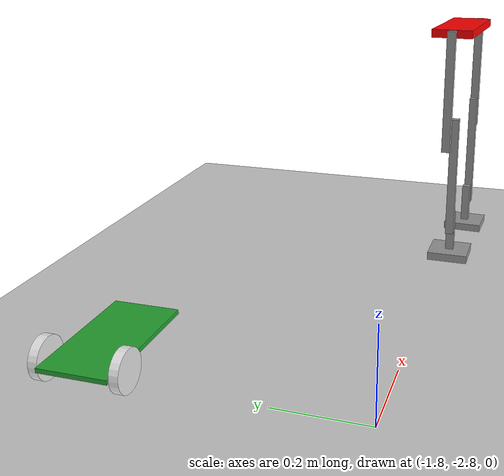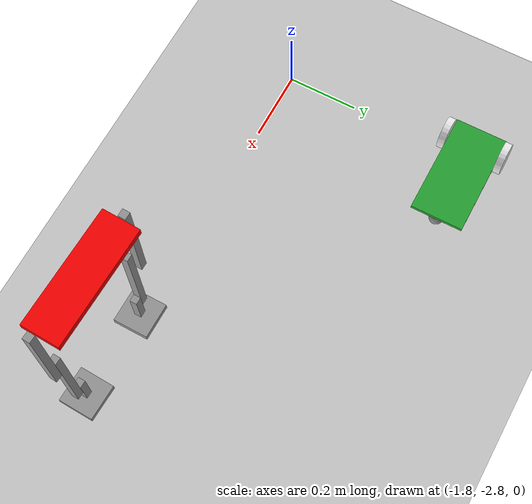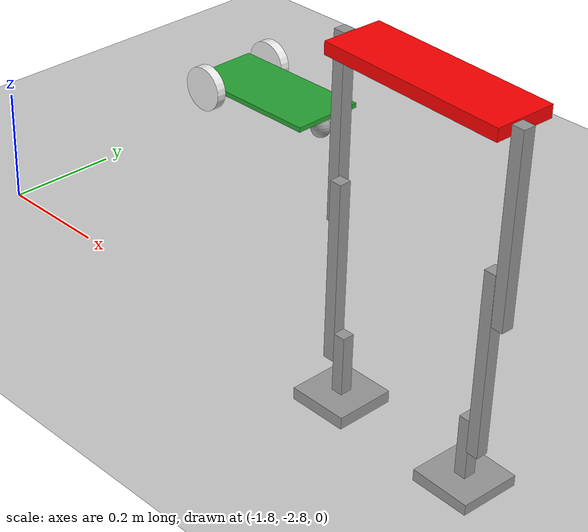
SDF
<sdf version="1.6">
 <world name="default">
  <model name="ground_plane">
   <static>1</static>
   <link name="link">
    <collision name="collision">
     <geometry><plane><normal>0 0 1</normal><size>100 100</size></plane></geometry>
     <surface><friction><ode><mu>100</mu><mu2>50</mu2></ode></friction></surface>
    </collision>
    <visual name="visual">
     <cast_shadows>0</cast_shadows>
     <geometry><plane><normal>0 0 1</normal><size>100 100</size></plane></geometry>
     <material>
      <script><uri>file://media/materials/scripts/gazebo.material</uri><name>Gazebo/Grey</name></script>
     </material>
    </visual>
   </link>
  </model>
  <model name="Humanoid_0">
   <link name="link_0">
    <pose>0.006667 0 -0.09 0 -0 0</pose>
    <inertial>
     <mass>5</mass>
     <inertia>
      <ixx>0.166667</ixx>
      <ixy>0</ixy>
      <ixz>0</ixz>
      <iyy>0.166667</iyy>
      <iyz>0</iyz>
      <izz>0.166667</izz>
     </inertia>
    </inertial>
    <visual name="visual">
     <geometry><box><size>0.1 0.1 0.02</size></box></geometry>
     <material>
      <lighting>1</lighting>
      <script><uri>file://media/materials/scripts/gazebo.material</uri><name>Gazebo/Grey</name></script>
      <ambient>0.3 0.3 0.3 1</ambient>
      <diffuse>0.7 0.7 0.7 1</diffuse>
      <specular>0.01 0.01 0.01 1</specular>
      <emissive>0 0 0 1</emissive>
      <shader type="vertex"><normal_map>__default__</normal_map></shader>
     </material>
    </visual>
    <collision name="collision">
     <geometry><box><size>0.1 0.1 0.02</size></box></geometry>
     <surface>
      <friction>
       <ode><mu>1</mu><mu2>1</mu2><fdir1>0 0 0</fdir1><slip1>0</slip1><slip2>0</slip2></ode>
       <torsional>
        <coefficient>1</coefficient>
        <patch_radius>0</patch_radius>
        <surface_radius>0</surface_radius>
        <use_patch_radius>1</use_patch_radius>
        <ode><slip>0</slip></ode>
       </torsional>
      </friction>
      <bounce><restitution_coefficient>0</restitution_coefficient><threshold>1e+06</threshold></bounce>
      <contact>
       <collide_without_contact>0</collide_without_contact>
       <collide_without_contact_bitmask>1</collide_without_contact_bitmask>
       <collide_bitmask>1</collide_bitmask>
       <ode>
        <soft_cfm>0</soft_cfm>
        <soft_erp>0.2</soft_erp>
        <kp>1e+13</kp>
        <kd>1</kd>
        <max_vel>0.01</max_vel>
        <min_depth>0</min_depth>
       </ode>
       <bullet>
        <split_impulse>1</split_impulse>
        <split_impulse_penetration_threshold>-0.01</split_impulse_penetration_threshold>
        <soft_cfm>0</soft_cfm>
        <soft_erp>0.2</soft_erp>
        <kp>1e+13</kp>
        <kd>1</kd>
       </bullet>
      </contact>
     </surface>
    </collision>
   </link>
   <link name="link_0_clone">
    <pose>0.256667 -0.006866 -0.09105 -0.000217 0.006468 -0.033563</pose>
    <inertial>
     <mass>5</mass>
     <inertia>
      <ixx>0.166667</ixx>
      <ixy>0</ixy>
      <ixz>0</ixz>
      <iyy>0.166667</iyy>
      <iyz>0</iyz>
      <izz>0.166667</izz>
     </inertia>
    </inertial>
    <visual name="visual">
     <geometry><box><size>0.1 0.1 0.02</size></box></geometry>
     <material>
      <lighting>1</lighting>
      <script><uri>file://media/materials/scripts/gazebo.material</uri><name>Gazebo/Grey</name></script>
      <ambient>0.3 0.3 0.3 1</ambient>
      <diffuse>0.7 0.7 0.7 1</diffuse>
      <specular>0.01 0.01 0.01 1</specular>
      <emissive>0 0 0 1</emissive>
      <shader type="vertex"><normal_map>__default__</normal_map></shader>
     </material>
    </visual>
    <collision name="collision">
     <geometry><box><size>0.1 0.1 0.02</size></box></geometry>
     <surface>
      <friction>
       <ode><mu>1</mu><mu2>1</mu2><fdir1>0 0 0</fdir1><slip1>0</slip1><slip2>0</slip2></ode>
       <torsional>
        <coefficient>1</coefficient>
        <patch_radius>0</patch_radius>
        <surface_radius>0</surface_radius>
        <use_patch_radius>1</use_patch_radius>
        <ode><slip>0</slip></ode>
       </torsional>
      </friction>
      <bounce><restitution_coefficient>0</restitution_coefficient><threshold>1e+06</threshold></bounce>
      <contact>
       <collide_without_contact>0</collide_without_contact>
       <collide_without_contact_bitmask>1</collide_without_contact_bitmask>
       <collide_bitmask>1</collide_bitmask>
       <ode>
        <soft_cfm>0</soft_cfm>
        <soft_erp>0.2</soft_erp>
        <kp>1e+13</kp>
        <kd>1</kd>
        <max_vel>0.01</max_vel>
        <min_depth>0</min_depth>
       </ode>
       <bullet>
        <split_impulse>1</split_impulse>
        <split_impulse_penetration_threshold>-0.01</split_impulse_penetration_threshold>
        <soft_cfm>0</soft_cfm>
        <soft_erp>0.2</soft_erp>
        <kp>1e+13</kp>
        <kd>1</kd>
       </bullet>
      </contact>
     </surface>
    </collision>
   </link>
   <link name="link_1">
    <pose>0.006667 0 -0.03 0 -0 0</pose>
    <inertial>
     <mass>1</mass>
     <inertia>
      <ixx>0.166667</ixx>
      <ixy>0</ixy>
      <ixz>0</ixz>
      <iyy>0.166667</iyy>
      <iyz>0</iyz>
      <izz>0.166667</izz>
     </inertia>
    </inertial>
    <visual name="visual">
     <geometry><box><size>0.02 0.02 0.1</size></box></geometry>
     <material>
      <lighting>1</lighting>
      <script><uri>file://media/materials/scripts/gazebo.material</uri><name>Gazebo/Grey</name></script>
      <ambient>0.3 0.3 0.3 1</ambient>
      <diffuse>0.7 0.7 0.7 1</diffuse>
      <specular>0.01 0.01 0.01 1</specular>
      <emissive>0 0 0 1</emissive>
      <shader type="vertex"><normal_map>__default__</normal_map></shader>
     </material>
    </visual>
    <collision name="collision">
     <geometry><box><size>0.02 0.02 0.1</size></box></geometry>
     <surface>
      <friction>
       <ode><mu>1</mu><mu2>1</mu2><fdir1>0 0 0</fdir1><slip1>0</slip1><slip2>0</slip2></ode>
       <torsional>
        <coefficient>1</coefficient>
        <patch_radius>0</patch_radius>
        <surface_radius>0</surface_radius>
        <use_patch_radius>1</use_patch_radius>
        <ode><slip>0</slip></ode>
       </torsional>
      </friction>
      <bounce><restitution_coefficient>0</restitution_coefficient><threshold>1e+06</threshold></bounce>
      <contact>
       <collide_without_contact>0</collide_without_contact>
       <collide_without_contact_bitmask>1</collide_without_contact_bitmask>
       <collide_bitmask>1</collide_bitmask>
       <ode>
        <soft_cfm>0</soft_cfm>
        <soft_erp>0.2</soft_erp>
        <kp>1e+13</kp>
        <kd>1</kd>
        <max_vel>0.01</max_vel>
        <min_depth>0</min_depth>
       </ode>
       <bullet>
        <split_impulse>1</split_impulse>
        <split_impulse_penetration_threshold>-0.01</split_impulse_penetration_threshold>
        <soft_cfm>0</soft_cfm>
        <soft_erp>0.2</soft_erp>
        <kp>1e+13</kp>
        <kd>1</kd>
       </bullet>
      </contact>
     </surface>
    </collision>
   </link>
   <link name="link_1_clone">
    <pose>-0.013333 0 0.12 0 -0 0</pose>
    <inertial>
     <mass>1</mass>
     <inertia>
      <ixx>0.166667</ixx>
      <ixy>0</ixy>
      <ixz>0</ixz>
      <iyy>0.166667</iyy>
      <iyz>0</iyz>
      <izz>0.166667</izz>
     </inertia>
    </inertial>
    <visual name="visual">
     <geometry><box><size>0.02 0.02 0.3</size></box></geometry>
     <material>
      <lighting>1</lighting>
      <script><uri>file://media/materials/scripts/gazebo.material</uri><name>Gazebo/Grey</name></script>
      <ambient>0.3 0.3 0.3 1</ambient>
      <diffuse>0.7 0.7 0.7 1</diffuse>
      <specular>0.01 0.01 0.01 1</specular>
      <emissive>0 0 0 1</emissive>
      <shader type="vertex"><normal_map>__default__</normal_map></shader>
     </material>
    </visual>
    <collision name="collision">
     <geometry><box><size>0.02 0.02 0.3</size></box></geometry>
     <surface>
      <friction>
       <ode><mu>1</mu><mu2>1</mu2><fdir1>0 0 0</fdir1><slip1>0</slip1><slip2>0</slip2></ode>
       <torsional>
        <coefficient>1</coefficient>
        <patch_radius>0</patch_radius>
        <surface_radius>0</surface_radius>
        <use_patch_radius>1</use_patch_radius>
        <ode><slip>0</slip></ode>
       </torsional>
      </friction>
      <bounce><restitution_coefficient>0</restitution_coefficient><threshold>1e+06</threshold></bounce>
      <contact>
       <collide_without_contact>0</collide_without_contact>
       <collide_without_contact_bitmask>1</collide_without_contact_bitmask>
       <collide_bitmask>1</collide_bitmask>
       <ode>
        <soft_cfm>0</soft_cfm>
        <soft_erp>0.2</soft_erp>
        <kp>1e+13</kp>
        <kd>1</kd>
        <max_vel>0.01</max_vel>
        <min_depth>0</min_depth>
       </ode>
       <bullet>
        <split_impulse>1</split_impulse>
        <split_impulse_penetration_threshold>-0.01</split_impulse_penetration_threshold>
        <soft_cfm>0</soft_cfm>
        <soft_erp>0.2</soft_erp>
        <kp>1e+13</kp>
        <kd>1</kd>
       </bullet>
      </contact>
     </surface>
    </collision>
   </link>
   <link name="link_1_clone_0">
    <pose>0.257051 -0.006866 -0.031684 -0.000217 0.006468 -0.033563</pose>
    <inertial>
     <mass>1</mass>
     <inertia>
      <ixx>0.166667</ixx>
      <ixy>0</ixy>
      <ixz>0</ixz>
      <iyy>0.166667</iyy>
      <iyz>0</iyz>
      <izz>0.166667</izz>
     </inertia>
    </inertial>
    <visual name="visual">
     <geometry><box><size>0.02 0.02 0.1</size></box></geometry>
     <material>
      <lighting>1</lighting>
      <script><uri>file://media/materials/scripts/gazebo.material</uri><name>Gazebo/Grey</name></script>
      <ambient>0.3 0.3 0.3 1</ambient>
      <diffuse>0.7 0.7 0.7 1</diffuse>
      <specular>0.01 0.01 0.01 1</specular>
      <emissive>0 0 0 1</emissive>
      <shader type="vertex"><normal_map>__default__</normal_map></shader>
     </material>
    </visual>
    <collision name="collision">
     <geometry><box><size>0.02 0.02 0.1</size></box></geometry>
     <surface>
      <friction>
       <ode><mu>1</mu><mu2>1</mu2><fdir1>0 0 0</fdir1><slip1>0</slip1><slip2>0</slip2></ode>
       <torsional>
        <coefficient>1</coefficient>
        <patch_radius>0</patch_radius>
        <surface_radius>0</surface_radius>
        <use_patch_radius>1</use_patch_radius>
        <ode><slip>0</slip></ode>
       </torsional>
      </friction>
      <bounce><restitution_coefficient>0</restitution_coefficient><threshold>1e+06</threshold></bounce>
      <contact>
       <collide_without_contact>0</collide_without_contact>
       <collide_without_contact_bitmask>1</collide_without_contact_bitmask>
       <collide_bitmask>1</collide_bitmask>
       <ode>
        <soft_cfm>0</soft_cfm>
        <soft_erp>0.2</soft_erp>
        <kp>1e+13</kp>
        <kd>1</kd>
        <max_vel>0.01</max_vel>
        <min_depth>0</min_depth>
       </ode>
       <bullet>
        <split_impulse>1</split_impulse>
        <split_impulse_penetration_threshold>-0.01</split_impulse_penetration_threshold>
        <soft_cfm>0</soft_cfm>
        <soft_erp>0.2</soft_erp>
        <kp>1e+13</kp>
        <kd>1</kd>
       </bullet>
      </contact>
     </surface>
    </collision>
   </link>
   <link name="link_1_clone_clone">
    <pose>-0.03389 0.016897 0.340001 0 5e-06 -0.021945</pose>
    <inertial>
     <mass>1</mass>
     <inertia>
      <ixx>0.166667</ixx>
      <ixy>0</ixy>
      <ixz>0</ixz>
      <iyy>0.166667</iyy>
      <iyz>0</iyz>
      <izz>0.166667</izz>
     </inertia>
    </inertial>
    <visual name="visual">
     <geometry><box><size>0.02 0.02 0.3</size></box></geometry>
     <material>
      <lighting>1</lighting>
      <script><uri>file://media/materials/scripts/gazebo.material</uri><name>Gazebo/Grey</name></script>
      <ambient>0.3 0.3 0.3 1</ambient>
      <diffuse>0.7 0.7 0.7 1</diffuse>
      <specular>0.01 0.01 0.01 1</specular>
      <emissive>0 0 0 1</emissive>
      <shader type="vertex"><normal_map>__default__</normal_map></shader>
     </material>
    </visual>
    <collision name="collision">
     <geometry><box><size>0.02 0.02 0.3</size></box></geometry>
     <surface>
      <friction>
       <ode><mu>1</mu><mu2>1</mu2><fdir1>0 0 0</fdir1><slip1>0</slip1><slip2>0</slip2></ode>
       <torsional>
        <coefficient>1</coefficient>
        <patch_radius>0</patch_radius>
        <surface_radius>0</surface_radius>
        <use_patch_radius>1</use_patch_radius>
        <ode><slip>0</slip></ode>
       </torsional>
      </friction>
      <bounce><restitution_coefficient>0</restitution_coefficient><threshold>1e+06</threshold></bounce>
      <contact>
       <collide_without_contact>0</collide_without_contact>
       <collide_without_contact_bitmask>1</collide_without_contact_bitmask>
       <collide_bitmask>1</collide_bitmask>
       <ode>
        <soft_cfm>0</soft_cfm>
        <soft_erp>0.2</soft_erp>
        <kp>1e+13</kp>
        <kd>1</kd>
        <max_vel>0.01</max_vel>
        <min_depth>0</min_depth>
       </ode>
       <bullet>
        <split_impulse>1</split_impulse>
        <split_impulse_penetration_threshold>-0.01</split_impulse_penetration_threshold>
        <soft_cfm>0</soft_cfm>
        <soft_erp>0.2</soft_erp>
        <kp>1e+13</kp>
        <kd>1</kd>
       </bullet>
      </contact>
     </surface>
    </collision>
   </link>
   <link name="link_1_clone_clone_0">
    <pose>0.277922 -0.010142 0.118054 -0.000217 0.006468 -0.033563</pose>
    <inertial>
     <mass>1</mass>
     <inertia>
      <ixx>0.166667</ixx>
      <ixy>0</ixy>
      <ixz>0</ixz>
      <iyy>0.166667</iyy>
      <iyz>0</iyz>
      <izz>0.166667</izz>
     </inertia>
    </inertial>
    <visual name="visual">
     <geometry><box><size>0.02 0.02 0.3</size></box></geometry>
     <material>
      <lighting>1</lighting>
      <script><uri>file://media/materials/scripts/gazebo.material</uri><name>Gazebo/Grey</name></script>
      <ambient>0.3 0.3 0.3 1</ambient>
      <diffuse>0.7 0.7 0.7 1</diffuse>
      <specular>0.01 0.01 0.01 1</specular>
      <emissive>0 0 0 1</emissive>
      <shader type="vertex"><normal_map>__default__</normal_map></shader>
     </material>
    </visual>
    <collision name="collision">
     <geometry><box><size>0.02 0.02 0.3</size></box></geometry>
     <surface>
      <friction>
       <ode><mu>1</mu><mu2>1</mu2><fdir1>0 0 0</fdir1><slip1>0</slip1><slip2>0</slip2></ode>
       <torsional>
        <coefficient>1</coefficient>
        <patch_radius>0</patch_radius>
        <surface_radius>0</surface_radius>
        <use_patch_radius>1</use_patch_radius>
        <ode><slip>0</slip></ode>
       </torsional>
      </friction>
      <bounce><restitution_coefficient>0</restitution_coefficient><threshold>1e+06</threshold></bounce>
      <contact>
       <collide_without_contact>0</collide_without_contact>
       <collide_without_contact_bitmask>1</collide_without_contact_bitmask>
       <collide_bitmask>1</collide_bitmask>
       <ode>
        <soft_cfm>0</soft_cfm>
        <soft_erp>0.2</soft_erp>
        <kp>1e+13</kp>
        <kd>1</kd>
        <max_vel>0.01</max_vel>
        <min_depth>0</min_depth>
       </ode>
       <bullet>
        <split_impulse>1</split_impulse>
        <split_impulse_penetration_threshold>-0.01</split_impulse_penetration_threshold>
        <soft_cfm>0</soft_cfm>
        <soft_erp>0.2</soft_erp>
        <kp>1e+13</kp>
        <kd>1</kd>
       </bullet>
      </contact>
     </surface>
    </collision>
   </link>
   <link name="link_1_clone_clone_clone">
    <pose>0.29956 -0.010603 0.338069 -0.000359 0.006466 -0.055508</pose>
    <inertial>
     <mass>1</mass>
     <inertia>
      <ixx>0.166667</ixx>
      <ixy>0</ixy>
      <ixz>0</ixz>
      <iyy>0.166667</iyy>
      <iyz>0</iyz>
      <izz>0.166667</izz>
     </inertia>
    </inertial>
    <visual name="visual">
     <geometry><box><size>0.02 0.02 0.3</size></box></geometry>
     <material>
      <lighting>1</lighting>
      <script><uri>file://media/materials/scripts/gazebo.material</uri><name>Gazebo/Grey</name></script>
      <ambient>0.3 0.3 0.3 1</ambient>
      <diffuse>0.7 0.7 0.7 1</diffuse>
      <specular>0.01 0.01 0.01 1</specular>
      <emissive>0 0 0 1</emissive>
      <shader type="vertex"><normal_map>__default__</normal_map></shader>
     </material>
    </visual>
    <collision name="collision">
     <geometry><box><size>0.02 0.02 0.3</size></box></geometry>
     <surface>
      <friction>
       <ode><mu>1</mu><mu2>1</mu2><fdir1>0 0 0</fdir1><slip1>0</slip1><slip2>0</slip2></ode>
       <torsional>
        <coefficient>1</coefficient>
        <patch_radius>0</patch_radius>
        <surface_radius>0</surface_radius>
        <use_patch_radius>1</use_patch_radius>
        <ode><slip>0</slip></ode>
       </torsional>
      </friction>
      <bounce><restitution_coefficient>0</restitution_coefficient><threshold>1e+06</threshold></bounce>
      <contact>
       <collide_without_contact>0</collide_without_contact>
       <collide_without_contact_bitmask>1</collide_without_contact_bitmask>
       <collide_bitmask>1</collide_bitmask>
       <ode>
        <soft_cfm>0</soft_cfm>
        <soft_erp>0.2</soft_erp>
        <kp>1e+13</kp>
        <kd>1</kd>
        <max_vel>0.01</max_vel>
        <min_depth>0</min_depth>
       </ode>
       <bullet>
        <split_impulse>1</split_impulse>
        <split_impulse_penetration_threshold>-0.01</split_impulse_penetration_threshold>
        <soft_cfm>0</soft_cfm>
        <soft_erp>0.2</soft_erp>
        <kp>1e+13</kp>
        <kd>1</kd>
       </bullet>
      </contact>
     </surface>
    </collision>
   </link>
   <link name="link_3">
    <pose>0.13353 0.013252 0.480016 -0.000217 0.006468 -0.033563</pose>
    <inertial>
     <mass>1</mass>
     <inertia>
      <ixx>0.166667</ixx>
      <ixy>0</ixy>
      <ixz>0</ixz>
      <iyy>0.166667</iyy>
      <iyz>0</iyz>
      <izz>0.166667</izz>
     </inertia>
    </inertial>
    <visual name="visual">
     <geometry><box><size>0.31 0.1 0.02</size></box></geometry>
     <material>
      <lighting>1</lighting>
      <script><uri>file://media/materials/scripts/gazebo.material</uri><name>Gazebo/Grey</name></script>
      <ambient>1 0 0 1</ambient>
      <diffuse>0.7 0.7 0.7 1</diffuse>
      <specular>0.01 0.01 0.01 1</specular>
      <emissive>0 0 0 1</emissive>
      <shader type="vertex"><normal_map>__default__</normal_map></shader>
     </material>
    </visual>
    <collision name="collision">
     <geometry><box><size>0.31 0.1 0.02</size></box></geometry>
     <surface>
      <friction>
       <ode><mu>1</mu><mu2>1</mu2><fdir1>0 0 0</fdir1><slip1>0</slip1><slip2>0</slip2></ode>
       <torsional>
        <coefficient>1</coefficient>
        <patch_radius>0</patch_radius>
        <surface_radius>0</surface_radius>
        <use_patch_radius>1</use_patch_radius>
        <ode><slip>0</slip></ode>
       </torsional>
      </friction>
      <bounce><restitution_coefficient>0</restitution_coefficient><threshold>1e+06</threshold></bounce>
      <contact>
       <collide_without_contact>0</collide_without_contact>
       <collide_without_contact_bitmask>1</collide_without_contact_bitmask>
       <collide_bitmask>1</collide_bitmask>
       <ode>
        <soft_cfm>0</soft_cfm>
        <soft_erp>0.2</soft_erp>
        <kp>1e+13</kp>
        <kd>1</kd>
        <max_vel>0.01</max_vel>
        <min_depth>0</min_depth>
       </ode>
       <bullet>
        <split_impulse>1</split_impulse>
        <split_impulse_penetration_threshold>-0.01</split_impulse_penetration_threshold>
        <soft_cfm>0</soft_cfm>
        <soft_erp>0.2</soft_erp>
        <kp>1e+13</kp>
        <kd>1</kd>
       </bullet>
      </contact>
     </surface>
    </collision>
   </link>
   <joint name="link_0_JOINT_0" type="fixed">
    <parent>link_0</parent>
    <child>link_1</child>
    <pose>0 0 -0.05 0 -0 0</pose>
    <physics>
     <ode><limit><cfm>0</cfm><erp>0.2</erp></limit><suspension><cfm>0</cfm><erp>0.2</erp></suspension></ode>
    </physics>
   </joint>
   <joint name="link_0_clone_JOINT_9" type="fixed">
    <parent>link_0_clone</parent>
    <child>link_1_clone_0</child>
    <pose>0 0 -0.05 0 -0 0</pose>
    <physics>
     <ode><limit><cfm>0</cfm><erp>0.2</erp></limit><suspension><cfm>0</cfm><erp>0.2</erp></suspension></ode>
    </physics>
   </joint>
   <joint name="link_1_JOINT_1" type="revolute">
    <parent>link_1</parent>
    <child>link_1_clone</child>
    <pose>0 0 -0.12 0 -0 0</pose>
    <axis>
     <xyz>1 0 0</xyz>
     <use_parent_model_frame>0</use_parent_model_frame>
     <limit><lower>0</lower><upper>0</upper><effort>-1</effort><velocity>-1</velocity></limit>
     <dynamics>
      <spring_reference>0</spring_reference>
      <spring_stiffness>0</spring_stiffness>
      <damping>0</damping>
      <friction>0</friction>
     </dynamics>
    </axis>
    <physics>
     <ode><limit><cfm>0</cfm><erp>0.2</erp></limit><suspension><cfm>0</cfm><erp>0.2</erp></suspension></ode>
    </physics>
   </joint>
   <joint name="link_1_clone_0_JOINT_12" type="revolute">
    <parent>link_1_clone_0</parent>
    <child>link_1_clone_clone_0</child>
    <pose>0 0 -0.12 0 -0 0</pose>
    <axis>
     <xyz>1 0 0</xyz>
     <use_parent_model_frame>0</use_parent_model_frame>
     <limit><lower>0</lower><upper>0</upper><effort>-1</effort><velocity>-1</velocity></limit>
     <dynamics>
      <spring_reference>0</spring_reference>
      <spring_stiffness>0</spring_stiffness>
      <damping>0</damping>
      <friction>0</friction>
     </dynamics>
    </axis>
    <physics>
     <ode><limit><cfm>0</cfm><erp>0.2</erp></limit><suspension><cfm>0</cfm><erp>0.2</erp></suspension></ode>
    </physics>
   </joint>
   <joint name="link_1_clone_JOINT_2" type="revolute">
    <parent>link_1_clone</parent>
    <child>link_1_clone_clone</child>
    <pose>0 0 -0.12 0 -0 0</pose>
    <axis>
     <xyz>1 0 0</xyz>
     <use_parent_model_frame>0</use_parent_model_frame>
     <limit><lower>-0.524</lower><upper>0.524</upper><effort>-1</effort><velocity>-1</velocity></limit>
     <dynamics>
      <spring_reference>0</spring_reference>
      <spring_stiffness>0</spring_stiffness>
      <damping>0</damping>
      <friction>0</friction>
     </dynamics>
    </axis>
    <physics>
     <ode><limit><cfm>0</cfm><erp>0.2</erp></limit><suspension><cfm>0</cfm><erp>0.2</erp></suspension></ode>
    </physics>
   </joint>
   <joint name="link_1_clone_clone_0_JOINT_13" type="revolute">
    <parent>link_1_clone_clone_0</parent>
    <child>link_1_clone_clone_clone</child>
    <pose>0 0 -0.12 0 -0 0</pose>
    <axis>
     <xyz>1 0 0</xyz>
     <use_parent_model_frame>0</use_parent_model_frame>
     <limit><lower>-0.524</lower><upper>0.524</upper><effort>-1</effort><velocity>-1</velocity></limit>
     <dynamics>
      <spring_reference>0</spring_reference>
      <spring_stiffness>0</spring_stiffness>
      <damping>0</damping>
      <friction>0</friction>
     </dynamics>
    </axis>
    <physics>
     <ode><limit><cfm>0</cfm><erp>0.2</erp></limit><suspension><cfm>0</cfm><erp>0.2</erp></suspension></ode>
    </physics>
   </joint>
   <joint name="link_1_clone_clone_JOINT_15" type="revolute">
    <parent>link_1_clone_clone</parent>
    <child>link_3</child>
    <pose>-0.15 0 0 0 -0 0</pose>
    <axis>
     <xyz>1 0 0</xyz>
     <use_parent_model_frame>0</use_parent_model_frame>
     <limit><lower>-0.524</lower><upper>0.524</upper><effort>-1</effort><velocity>-1</velocity></limit>
     <dynamics>
      <spring_reference>0</spring_reference>
      <spring_stiffness>0</spring_stiffness>
      <damping>0</damping>
      <friction>0</friction>
     </dynamics>
    </axis>
    <physics>
     <ode><limit><cfm>0</cfm><erp>0.2</erp></limit><suspension><cfm>0</cfm><erp>0.2</erp></suspension></ode>
    </physics>
   </joint>
   <joint name="link_1_clone_clone_clone_JOINT_17" type="revolute">
    <parent>link_1_clone_clone_clone</parent>
    <child>link_3</child>
    <pose>0.15 0 0 0 -0 0</pose>
    <axis>
     <xyz>1 0 0</xyz>
     <use_parent_model_frame>0</use_parent_model_frame>
     <limit><lower>-0.524</lower><upper>0.524</upper><effort>-1</effort><velocity>-1</velocity></limit>
     <dynamics>
      <spring_reference>0</spring_reference>
      <spring_stiffness>0</spring_stiffness>
      <damping>0</damping>
      <friction>0</friction>
     </dynamics>
    </axis>
    <physics>
     <ode><limit><cfm>0</cfm><erp>0.2</erp></limit><suspension><cfm>0</cfm><erp>0.2</erp></suspension></ode>
    </physics>
   </joint>
   <static>0</static>
   <pose>-0.984759 -2.8118 0.100575 -1.4e-05 0.010314 -0.008419</pose>
  </model>
  <model name="two_wheel_0">
   <link name="link_0">
    <pose>-0.000367 0.008018 0.045 0 -0 0</pose>
    <inertial>
     <mass>1</mass>
     <inertia>
      <ixx>0.166667</ixx>
      <ixy>0</ixy>
      <ixz>0</ixz>
      <iyy>0.166667</iyy>
      <iyz>0</iyz>
      <izz>0.166667</izz>
     </inertia>
    </inertial>
    <visual name="visual">
     <geometry><box><size>0.3 0.15 0.01</size></box></geometry>
     <material>
      <lighting>1</lighting>
      <script><uri>file://media/materials/scripts/gazebo.material</uri><name>Gazebo/Green</name></script>
      <ambient>0 1 0 1</ambient>
      <diffuse>0.7 0.7 0.7 1</diffuse>
      <specular>0.01 0.01 0.01 1</specular>
      <emissive>0 0 0 1</emissive>
      <shader type="vertex"><normal_map>__default__</normal_map></shader>
     </material>
    </visual>
    <collision name="collision">
     <geometry><box><size>0.3 0.15 0.01</size></box></geometry>
     <surface>
      <friction>
       <ode><mu>1</mu><mu2>1</mu2><fdir1>0 0 0</fdir1><slip1>0</slip1><slip2>0</slip2></ode>
       <torsional>
        <coefficient>1</coefficient>
        <patch_radius>0</patch_radius>
        <surface_radius>0</surface_radius>
        <use_patch_radius>1</use_patch_radius>
        <ode><slip>0</slip></ode>
       </torsional>
      </friction>
      <bounce><restitution_coefficient>0</restitution_coefficient><threshold>1e+06</threshold></bounce>
      <contact>
       <collide_without_contact>0</collide_without_contact>
       <collide_without_contact_bitmask>1</collide_without_contact_bitmask>
       <collide_bitmask>1</collide_bitmask>
       <ode>
        <soft_cfm>0</soft_cfm>
        <soft_erp>0.2</soft_erp>
        <kp>1e+13</kp>
        <kd>1</kd>
        <max_vel>0.01</max_vel>
        <min_depth>0</min_depth>
       </ode>
       <bullet>
        <split_impulse>1</split_impulse>
        <split_impulse_penetration_threshold>-0.01</split_impulse_penetration_threshold>
        <soft_cfm>0</soft_cfm>
        <soft_erp>0.2</soft_erp>
        <kp>1e+13</kp>
        <kd>1</kd>
       </bullet>
      </contact>
     </surface>
    </collision>
   </link>
   <link name="link_0_0">
    <pose>0.134726 0.004188 0.02 0 -0 0</pose>
    <inertial>
     <mass>1</mass>
     <inertia><ixx>0.1</ixx><ixy>0</ixy><ixz>0</ixz><iyy>0.1</iyy><iyz>0</iyz><izz>0.1</izz></inertia>
    </inertial>
    <visual name="visual">
     <geometry><sphere><radius>0.02</radius></sphere></geometry>
     <material>
      <lighting>1</lighting>
      <script><uri>file://media/materials/scripts/gazebo.material</uri><name>Gazebo/Grey</name></script>
      <ambient>0.3 0.3 0.3 1</ambient>
      <diffuse>0.7 0.7 0.7 1</diffuse>
      <specular>0.01 0.01 0.01 1</specular>
      <emissive>0 0 0 1</emissive>
      <shader type="vertex"><normal_map>__default__</normal_map></shader>
     </material>
    </visual>
    <collision name="collision">
     <geometry><sphere><radius>0.02</radius></sphere></geometry>
     <surface>
      <friction>
       <ode><mu>1</mu><mu2>1</mu2><fdir1>0 0 0</fdir1><slip1>0</slip1><slip2>0</slip2></ode>
       <torsional>
        <coefficient>1</coefficient>
        <patch_radius>0</patch_radius>
        <surface_radius>0</surface_radius>
        <use_patch_radius>1</use_patch_radius>
        <ode><slip>0</slip></ode>
       </torsional>
      </friction>
      <bounce><restitution_coefficient>0</restitution_coefficient><threshold>1e+06</threshold></bounce>
      <contact>
       <collide_without_contact>0</collide_without_contact>
       <collide_without_contact_bitmask>1</collide_without_contact_bitmask>
       <collide_bitmask>1</collide_bitmask>
       <ode>
        <soft_cfm>0</soft_cfm>
        <soft_erp>0.2</soft_erp>
        <kp>1e+13</kp>
        <kd>1</kd>
        <max_vel>0.01</max_vel>
        <min_depth>0</min_depth>
       </ode>
       <bullet>
        <split_impulse>1</split_impulse>
        <split_impulse_penetration_threshold>-0.01</split_impulse_penetration_threshold>
        <soft_cfm>0</soft_cfm>
        <soft_erp>0.2</soft_erp>
        <kp>1e+13</kp>
        <kd>1</kd>
       </bullet>
      </contact>
     </surface>
    </collision>
   </link>
   <link name="link_1">
    <pose>-0.100367 -0.076982 0.045 1.5707 -0 0</pose>
    <inertial>
     <mass>1</mass>
     <inertia><ixx>0.145833</ixx><ixy>0</ixy><ixz>0</ixz><iyy>0.145833</iyy><iyz>0</iyz><izz>0.125</izz></inertia>
    </inertial>
    <visual name="visual">
     <geometry><cylinder><radius>0.045</radius><length>0.02</length></cylinder></geometry>
     <material>
      <lighting>1</lighting>
      <script><uri>file://media/materials/scripts/gazebo.material</uri><name>Gazebo/White</name></script>
      <ambient>1 1 1 1</ambient>
      <diffuse>0.7 0.7 0.7 1</diffuse>
      <specular>0.01 0.01 0.01 1</specular>
      <emissive>0 0 0 1</emissive>
      <shader type="vertex"><normal_map>__default__</normal_map></shader>
     </material>
    </visual>
    <collision name="collision">
     <geometry><cylinder><radius>0.045</radius><length>0.02</length></cylinder></geometry>
     <surface>
      <friction>
       <ode><mu>1</mu><mu2>1</mu2><fdir1>0 0 0</fdir1><slip1>0</slip1><slip2>0</slip2></ode>
       <torsional>
        <coefficient>1</coefficient>
        <patch_radius>0</patch_radius>
        <surface_radius>0</surface_radius>
        <use_patch_radius>1</use_patch_radius>
        <ode><slip>0</slip></ode>
       </torsional>
      </friction>
      <bounce><restitution_coefficient>0</restitution_coefficient><threshold>1e+06</threshold></bounce>
      <contact>
       <collide_without_contact>0</collide_without_contact>
       <collide_without_contact_bitmask>1</collide_without_contact_bitmask>
       <collide_bitmask>1</collide_bitmask>
       <ode>
        <soft_cfm>0</soft_cfm>
        <soft_erp>0.2</soft_erp>
        <kp>1e+13</kp>
        <kd>1</kd>
        <max_vel>0.01</max_vel>
        <min_depth>0</min_depth>
       </ode>
       <bullet>
        <split_impulse>1</split_impulse>
        <split_impulse_penetration_threshold>-0.01</split_impulse_penetration_threshold>
        <soft_cfm>0</soft_cfm>
        <soft_erp>0.2</soft_erp>
        <kp>1e+13</kp>
        <kd>1</kd>
       </bullet>
      </contact>
     </surface>
    </collision>
   </link>
   <link name="link_1_clone">
    <pose>-0.100367 0.093018 0.045 1.5707 -0 0</pose>
    <inertial>
     <mass>1</mass>
     <inertia><ixx>0.145833</ixx><ixy>0</ixy><ixz>0</ixz><iyy>0.145833</iyy><iyz>0</iyz><izz>0.125</izz></inertia>
    </inertial>
    <visual name="visual">
     <geometry><cylinder><radius>0.045</radius><length>0.02</length></cylinder></geometry>
     <material>
      <lighting>1</lighting>
      <script><uri>file://media/materials/scripts/gazebo.material</uri><name>Gazebo/White</name></script>
      <ambient>1 1 1 1</ambient>
      <diffuse>0.7 0.7 0.7 1</diffuse>
      <specular>0.01 0.01 0.01 1</specular>
      <emissive>0 0 0 1</emissive>
      <shader type="vertex"><normal_map>__default__</normal_map></shader>
     </material>
    </visual>
    <collision name="collision">
     <geometry><cylinder><radius>0.045</radius><length>0.02</length></cylinder></geometry>
     <surface>
      <friction>
       <ode><mu>1</mu><mu2>1</mu2><fdir1>0 0 0</fdir1><slip1>0</slip1><slip2>0</slip2></ode>
       <torsional>
        <coefficient>1</coefficient>
        <patch_radius>0</patch_radius>
        <surface_radius>0</surface_radius>
        <use_patch_radius>1</use_patch_radius>
        <ode><slip>0</slip></ode>
       </torsional>
      </friction>
      <bounce><restitution_coefficient>0</restitution_coefficient><threshold>1e+06</threshold></bounce>
      <contact>
       <collide_without_contact>0</collide_without_contact>
       <collide_without_contact_bitmask>1</collide_without_contact_bitmask>
       <collide_bitmask>1</collide_bitmask>
       <ode>
        <soft_cfm>0</soft_cfm>
        <soft_erp>0.2</soft_erp>
        <kp>1e+13</kp>
        <kd>1</kd>
        <max_vel>0.01</max_vel>
        <min_depth>0</min_depth>
       </ode>
       <bullet>
        <split_impulse>1</split_impulse>
        <split_impulse_penetration_threshold>-0.01</split_impulse_penetration_threshold>
        <soft_cfm>0</soft_cfm>
        <soft_erp>0.2</soft_erp>
        <kp>1e+13</kp>
        <kd>1</kd>
       </bullet>
      </contact>
     </surface>
    </collision>
   </link>
   <joint name="link_0_JOINT_1_0" type="ball">
    <parent>link_0</parent>
    <child>link_0_0</child>
    <physics>
     <ode><limit><cfm>0</cfm><erp>0.2</erp></limit><suspension><cfm>0</cfm><erp>0.2</erp></suspension></ode>
    </physics>
   </joint>
   <joint name="link_0_JOINT_1" type="revolute">
    <parent>link_0</parent>
    <child>link_1</child>
    <axis>
     <xyz>0 0 1</xyz>
     <use_parent_model_frame>0</use_parent_model_frame>
     <limit>
      <lower>-1.79769e+308</lower>
      <upper>1.79769e+308</upper>
      <effort>-1</effort>
      <velocity>-1</velocity>
     </limit>
     <dynamics>
      <spring_reference>0</spring_reference>
      <spring_stiffness>0</spring_stiffness>
      <damping>0</damping>
      <friction>0</friction>
     </dynamics>
    </axis>
    <physics>
     <ode><limit><cfm>0</cfm><erp>0.2</erp></limit><suspension><cfm>0</cfm><erp>0.2</erp></suspension></ode>
    </physics>
   </joint>
   <joint name="link_0_JOINT_2" type="revolute">
    <parent>link_0</parent>
    <child>link_1_clone</child>
    <axis>
     <xyz>0 0 1</xyz>
     <use_parent_model_frame>0</use_parent_model_frame>
     <limit>
      <lower>-1.79769e+308</lower>
      <upper>1.79769e+308</upper>
      <effort>-1</effort>
      <velocity>-1</velocity>
     </limit>
     <dynamics>
      <spring_reference>0</spring_reference>
      <spring_stiffness>0</spring_stiffness>
      <damping>0</damping>
      <friction>0</friction>
     </dynamics>
    </axis>
    <physics>
     <ode><limit><cfm>0</cfm><erp>0.2</erp></limit><suspension><cfm>0</cfm><erp>0.2</erp></suspension></ode>
    </physics>
   </joint>
   <static>0</static>
   <pose>-1.72656 -2.24986 0 4e-06 1.1e-05 0.003425</pose>
  </model>
 </world>
</sdf>
